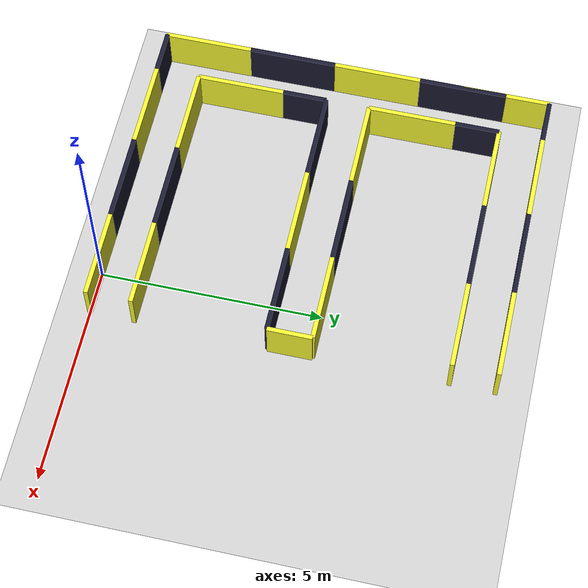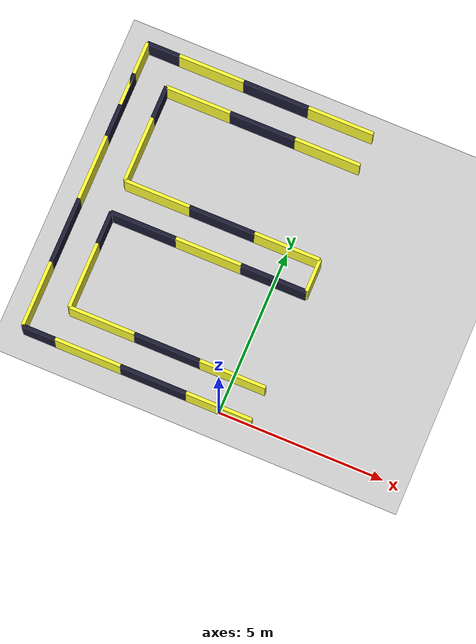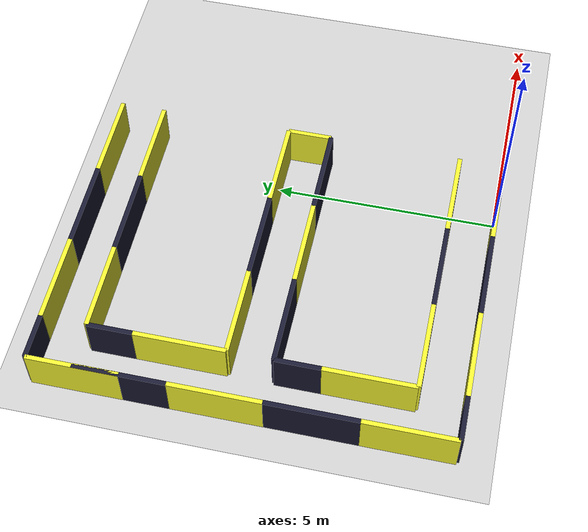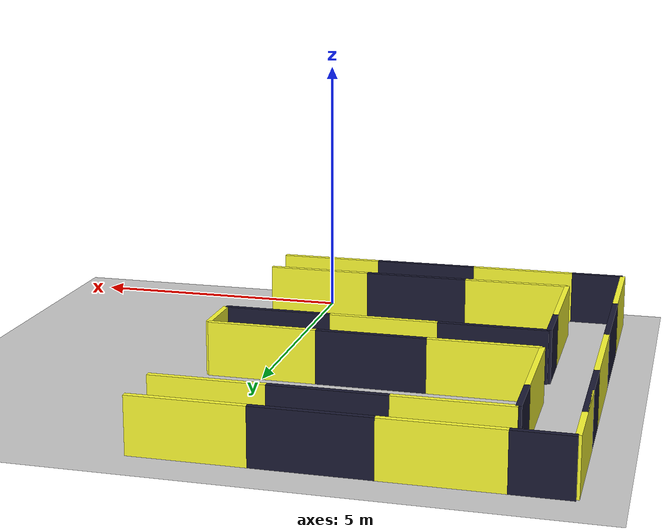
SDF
<sdf version='1.6'>
  <world name='default'>
      <include>
        <uri>model://sun</uri>
      </include>
      <include>
        <uri>model://ground_plane</uri>
      </include>
    <model name="my_wall">
    <static>true</static>
    <link name="link">
      <pose>0 0 0.5 0 0 0</pose>
      <collision name="collision">
        <geometry>
          <box>
            <size>2 0.1 1</size>
          </box>
        </geometry>
      </collision>
      <visual name="visual">
        <cast_shadows>false</cast_shadows>
        <geometry>
          <box>
            <size>2 0.1 1</size>
          </box>
        </geometry>
        <material>
          <ambient>1 1 0.1 1</ambient>
          <diffuse>1 1 0.2 1</diffuse>
          <specular>0 0 0 0</specular>
          <emissive>0 0 0 1</emissive>
        </material>
      </visual>
    </link>
  </model>
  <model name="my_wall1">
    <static>true</static>
    <link name="link">
      <pose>-2 0 0.5 0 0 0</pose>
      <collision name="collision">
        <geometry>
          <box>
            <size>2 0.1 1</size>
          </box>
        </geometry>
      </collision>
      <visual name="visual">
        <cast_shadows>false</cast_shadows>
        <geometry>
          <box>
            <size>2 0.1 1</size>
          </box>
        </geometry>
        <material>
          <ambient>0.1 0.1 0.1 1</ambient>
          <diffuse>0.1 0.1 0.2 1</diffuse>
          <specular>0 0 0 0</specular>
          <emissive>0 0 0 1</emissive>
        </material>
      </visual>
    </link>
  </model>
  <model name="my_wall2">
    <static>true</static>
    <link name="link">
      <pose>-4 0 0.5 0 0 0</pose>
      <collision name="collision">
        <geometry>
          <box>
            <size>2 0.1 1</size>
          </box>
        </geometry>
      </collision>
      <visual name="visual">
        <cast_shadows>false</cast_shadows>
        <geometry>
          <box>
            <size>2 0.1 1</size>
          </box>
        </geometry>
        <material>
          <ambient>1 1 0.1 1</ambient>
          <diffuse>1 1 0.2 1</diffuse>
          <specular>0 0 0 0</specular>
          <emissive>0 0 0 1</emissive>
        </material>
      </visual>
    </link>
  </model>
  <model name="my_wall3">
    <static>true</static>
    <link name="link">
      <pose>-5.5 0 0.5 0 0 0</pose>
      <collision name="collision">
        <geometry>
          <box>
            <size>1 0.1 1</size>
          </box>
        </geometry>
      </collision>
      <visual name="visual">
        <cast_shadows>false</cast_shadows>
        <geometry>
          <box>
            <size>1 0.1 1</size>
          </box>
        </geometry>
        <material>
          <ambient>0.1 0.1 0.1 1</ambient>
          <diffuse>0.1 0.1 0.2 1</diffuse>
          <specular>0 0 0 0</specular>
          <emissive>0 0 0 1</emissive>
        </material>
      </visual>
    </link>
  </model>
  <model name="my_wall4">
    <static>true</static>
    <link name="link">
      <pose>0 1 0.5 0 0 0</pose>
      <collision name="collision">
        <geometry>
          <box>
            <size>2 0.1 1</size>
          </box>
        </geometry>
      </collision>
      <visual name="visual">
        <cast_shadows>false</cast_shadows>
        <geometry>
          <box>
            <size>2 0.1 1</size>
          </box>
        </geometry>
        <material>
          <ambient>1 1 0.1 1</ambient>
          <diffuse>1 1 0.2 1</diffuse>
          <specular>0 0 0 0</specular>
          <emissive>0 0 0 1</emissive>
        </material>
      </visual>
    </link>
  </model>
  <model name="my_wall5">
    <static>true</static>
    <link name="link">
      <pose>-2 1 0.5 0 0 0</pose>
      <collision name="collision">
        <geometry>
          <box>
            <size>2 0.1 1</size>
          </box>
        </geometry>
      </collision>
      <visual name="visual">
        <cast_shadows>false</cast_shadows>
        <geometry>
          <box>
            <size>2 0.1 1</size>
          </box>
        </geometry>
        <material>
          <ambient>0.1 0.1 0.1 1</ambient>
          <diffuse>0.1 0.1 0.2 1</diffuse>
          <specular>0 0 0 0</specular>
          <emissive>0 0 0 1</emissive>
        </material>
      </visual>
    </link>
  </model>
  <model name="my_wall6">
    <static>true</static>
    <link name="link">
      <pose>-4 1 0.5 0 0 0</pose>
      <collision name="collision">
        <geometry>
          <box>
            <size>2 0.1 1</size>
          </box>
        </geometry>
      </collision>
      <visual name="visual">
        <cast_shadows>false</cast_shadows>
        <geometry>
          <box>
            <size>2 0.1 1</size>
          </box>
        </geometry>
        <material>
          <ambient>1 1 0.1 1</ambient>
          <diffuse>1 1 0.2 1</diffuse>
          <specular>0 0 0 0</specular>
          <emissive>0 0 0 1</emissive>
        </material>
      </visual>
    </link>
  </model>
  <model name="my_wall7">
    <static>true</static>
    <link name="link">
      <pose>-6 1 0.5 0 0 1.57</pose>
      <collision name="collision">
        <geometry>
          <box>
            <size>2 0.1 1</size>
          </box>
        </geometry>
      </collision>
      <visual name="visual">
        <cast_shadows>false</cast_shadows>
        <geometry>
          <box>
            <size>2 0.1 1</size>
          </box>
        </geometry>
        <material>
          <ambient>1 1 0.1 1</ambient>
          <diffuse>1 1 0.2 1</diffuse>
          <specular>0 0 0 0</specular>
          <emissive>0 0 0 1</emissive>
        </material>
      </visual>
    </link>
  </model>
  <model name="my_wall8">
    <static>true</static>
    <link name="link">
      <pose>-5 2 0.5 0 0 1.57</pose>
      <collision name="collision">
        <geometry>
          <box>
            <size>2 0.1 1</size>
          </box>
        </geometry>
      </collision>
      <visual name="visual">
        <cast_shadows>false</cast_shadows>
        <geometry>
          <box>
            <size>2 0.1 1</size>
          </box>
        </geometry>
        <material>
          <ambient>1 1 0.1 1</ambient>
          <diffuse>1 1 0.2 1</diffuse>
          <specular>0 0 0 0</specular>
          <emissive>0 0 0 1</emissive>
        </material>
      </visual>
    </link>
  </model>
  <model name="my_wall9">
    <static>true</static>
    <link name="link">
      <pose>-6 3 0.5 0 0 1.57</pose>
      <collision name="collision">
        <geometry>
          <box>
            <size>2 0.1 1</size>
          </box>
        </geometry>
      </collision>
      <visual name="visual">
        <cast_shadows>false</cast_shadows>
        <geometry>
          <box>
            <size>2 0.1 1</size>
          </box>
        </geometry>
        <material>
          <ambient>0.1 0.1 0.1 1</ambient>
          <diffuse>0.1 0.1 0.2 1</diffuse>
          <specular>0 0 0 0</specular>
          <emissive>0 0 0 1</emissive>
        </material>
      </visual>
    </link>
  </model>
  <model name="my_wall10">
    <static>true</static>
    <link name="link">
      <pose>-5 3.5 0.5 0 0 1.57</pose>
      <collision name="collision">
        <geometry>
          <box>
            <size>1 0.1 1</size>
          </box>
        </geometry>
      </collision>
      <visual name="visual">
        <cast_shadows>false</cast_shadows>
        <geometry>
          <box>
            <size>1 0.1 1</size>
          </box>
        </geometry>
        <material>
          <ambient>0.1 0.1 0.1 1</ambient>
          <diffuse>0.1 0.1 0.2 1</diffuse>
          <specular>0 0 0 0</specular>
          <emissive>0 0 0 1</emissive>
        </material>
      </visual>
    </link>
  </model>
  <model name="my_wall11">
    <static>true</static>
    <link name="link">
      <pose>0 5 0.5 0 0 0</pose>
      <collision name="collision">
        <geometry>
          <box>
            <size>2 0.1 1</size>
          </box>
        </geometry>
      </collision>
      <visual name="visual">
        <cast_shadows>false</cast_shadows>
        <geometry>
          <box>
            <size>2 0.1 1</size>
          </box>
        </geometry>
        <material>
          <ambient>1 1 0.1 1</ambient>
          <diffuse>1 1 0.2 1</diffuse>
          <specular>0 0 0 0</specular>
          <emissive>0 0 0 1</emissive>
        </material>
      </visual>
    </link>
  </model>
  <model name="my_wall12">
    <static>true</static>
    <link name="link">
      <pose>-2 5 0.5 0 0 0</pose>
      <collision name="collision">
        <geometry>
          <box>
            <size>2 0.1 1</size>
          </box>
        </geometry>
      </collision>
      <visual name="visual">
        <cast_shadows>false</cast_shadows>
        <geometry>
          <box>
            <size>2 0.1 1</size>
          </box>
        </geometry>
        <material>
          <ambient>0.1 0.1 0.1 1</ambient>
          <diffuse>0.1 0.1 0.2 1</diffuse>
          <specular>0 0 0 0</specular>
          <emissive>0 0 0 1</emissive>
        </material>
      </visual>
    </link>
  </model>
  <model name="my_wall13">
    <static>true</static>
    <link name="link">
      <pose>-4 5 0.5 0 0 0</pose>
      <collision name="collision">
        <geometry>
          <box>
            <size>2 0.1 1</size>
          </box>
        </geometry>
      </collision>
      <visual name="visual">
        <cast_shadows>false</cast_shadows>
        <geometry>
          <box>
            <size>2 0.1 1</size>
          </box>
        </geometry>
        <material>
          <ambient>1 1 0.1 1</ambient>
          <diffuse>1 1 0.2 1</diffuse>
          <specular>0 0 0 0</specular>
          <emissive>0 0 0 1</emissive>
        </material>
      </visual>
    </link>
  </model>

  <model name="my_wall15">
    <static>true</static>
    <link name="link">
      <pose>0 4 0.5 0 0 0</pose>
      <collision name="collision">
        <geometry>
          <box>
            <size>2 0.1 1</size>
          </box>
        </geometry>
      </collision>
      <visual name="visual">
        <cast_shadows>false</cast_shadows>
        <geometry>
          <box>
            <size>2 0.1 1</size>
          </box>
        </geometry>
        <material>
          <ambient>0.1 0.1 0.1 1</ambient>
          <diffuse>0.1 0.1 0.2 1</diffuse>
          <specular>0 0 0 0</specular>
          <emissive>0 0 0 1</emissive>
        </material>
      </visual>
    </link>
  </model>
  <model name="my_wall16">
    <static>true</static>
    <link name="link">
      <pose>-2 4 0.5 0 0 0</pose>
      <collision name="collision">
        <geometry>
          <box>
            <size>2 0.1 1</size>
          </box>
        </geometry>
      </collision>
      <visual name="visual">
        <cast_shadows>false</cast_shadows>
        <geometry>
          <box>
            <size>2 0.1 1</size>
          </box>
        </geometry>
        <material>
          <ambient>1 1 0.1 1</ambient>
          <diffuse>1 1 0.2 1</diffuse>
          <specular>0 0 0 0</specular>
          <emissive>0 0 0 1</emissive>
        </material>
      </visual>
    </link>
  </model>
  <model name="my_wall17">
    <static>true</static>
    <link name="link">
      <pose>-4 4 0.5 0 0 0</pose>
      <collision name="collision">
        <geometry>
          <box>
            <size>2 0.1 1</size>
          </box>
        </geometry>
      </collision>
      <visual name="visual">
        <cast_shadows>false</cast_shadows>
        <geometry>
          <box>
            <size>2 0.1 1</size>
          </box>
        </geometry>
        <material>
          <ambient>0.1 0.1 0.1 1</ambient>
          <diffuse>0.1 0.1 0.2 1</diffuse>
          <specular>0 0 0 0</specular>
          <emissive>0 0 0 1</emissive>
        </material>
      </visual>
    </link>
  </model>
  <model name="my_wall18">
    <static>true</static>
    <link name="link">
      <pose>1 4.5 0.5 0 0 1.57</pose>
      <collision name="collision">
        <geometry>
          <box>
            <size>1 0.1 1</size>
          </box>
        </geometry>
      </collision>
      <visual name="visual">
        <cast_shadows>false</cast_shadows>
        <geometry>
          <box>
            <size>1 0.1 1</size>
          </box>
        </geometry>
        <material>
          <ambient>1 1 0.1 1</ambient>
          <diffuse>1 1 0.2 1</diffuse>
          <specular>0 0 0 0</specular>
          <emissive>0 0 0 1</emissive>
        </material>
      </visual>
    </link>
  </model>
  <model name="my_wall19">
    <static>true</static>
    <link name="link">
      <pose>-6 5 0.5 0 0 1.57</pose>
      <collision name="collision">
        <geometry>
          <box>
            <size>2 0.1 1</size>
          </box>
        </geometry>
      </collision>
      <visual name="visual">
        <cast_shadows>false</cast_shadows>
        <geometry>
          <box>
            <size>2 0.1 1</size>
          </box>
        </geometry>
        <material>
          <ambient>1 1 0.1 1</ambient>
          <diffuse>1 1 0.2 1</diffuse>
          <specular>0 0 0 0</specular>
          <emissive>0 0 0 1</emissive>
        </material>
      </visual>
    </link>
  </model>
  <model name="my_wall20">
    <static>true</static>
    <link name="link">
      <pose>-5 6 0.5 0 0 1.57</pose>
      <collision name="collision">
        <geometry>
          <box>
            <size>2 0.1 1</size>
          </box>
        </geometry>
      </collision>
      <visual name="visual">
        <cast_shadows>false</cast_shadows>
        <geometry>
          <box>
            <size>2 0.1 1</size>
          </box>
        </geometry>
        <material>
          <ambient>1 1 0.1 1</ambient>
          <diffuse>1 1 0.2 1</diffuse>
          <specular>0 0 0 0</specular>
          <emissive>0 0 0 1</emissive>
        </material>
      </visual>
    </link>
  </model>
  <model name="my_wall21">
    <static>true</static>
    <link name="link">
      <pose>-6 7 0.5 0 0 1.57</pose>
      <collision name="collision">
        <geometry>
          <box>
            <size>2 0.1 1</size>
          </box>
        </geometry>
      </collision>
      <visual name="visual">
        <cast_shadows>false</cast_shadows>
        <geometry>
          <box>
            <size>2 0.1 1</size>
          </box>
        </geometry>
        <material>
          <ambient>0.1 0.1 0.1 1</ambient>
          <diffuse>0.1 0.1 0.2 1</diffuse>
          <specular>0 0 0 0</specular>
          <emissive>0 0 0 1</emissive>
        </material>
      </visual>
    </link>
  </model>
  <model name="my_wall22">
    <static>true</static>
    <link name="link">
      <pose>-5 7.5 0.5 0 0 1.57</pose>
      <collision name="collision">
        <geometry>
          <box>
            <size>1 0.1 1</size>
          </box>
        </geometry>
      </collision>
      <visual name="visual">
        <cast_shadows>false</cast_shadows>
        <geometry>
          <box>
            <size>1 0.1 1</size>
          </box>
        </geometry>
        <material>
          <ambient>0.1 0.1 0.1 1</ambient>
          <diffuse>0.1 0.1 0.2 1</diffuse>
          <specular>0 0 0 0</specular>
          <emissive>0 0 0 1</emissive>
        </material>
      </visual>
    </link>
  </model>

  <model name="my_wall24">
    <static>true</static>
    <link name="link">
      <pose>0 9 0.5 0 0 0</pose>
      <collision name="collision">
        <geometry>
          <box>
            <size>2 0.1 1</size>
          </box>
        </geometry>
      </collision>
      <visual name="visual">
        <cast_shadows>false</cast_shadows>
        <geometry>
          <box>
            <size>2 0.1 1</size>
          </box>
        </geometry>
        <material>
          <ambient>1 1 0.1 1</ambient>
          <diffuse>1 1 0.2 1</diffuse>
          <specular>0 0 0 0</specular>
          <emissive>0 0 0 1</emissive>
        </material>
      </visual>
    </link>
  </model>
  <model name="my_wall25">
    <static>true</static>
    <link name="link">
      <pose>-2 9 0.5 0 0 0</pose>
      <collision name="collision">
        <geometry>
          <box>
            <size>2 0.1 1</size>
          </box>
        </geometry>
      </collision>
      <visual name="visual">
        <cast_shadows>false</cast_shadows>
        <geometry>
          <box>
            <size>2 0.1 1</size>
          </box>
        </geometry>
        <material>
          <ambient>0.1 0.1 0.1 1</ambient>
          <diffuse>0.1 0.1 0.2 1</diffuse>
          <specular>0 0 0 0</specular>
          <emissive>0 0 0 1</emissive>
        </material>
      </visual>
    </link>
  </model>
  <model name="my_wall26">
    <static>true</static>
    <link name="link">
      <pose>-4 9 0.5 0 0 0</pose>
      <collision name="collision">
        <geometry>
          <box>
            <size>2 0.1 1</size>
          </box>
        </geometry>
      </collision>
      <visual name="visual">
        <cast_shadows>false</cast_shadows>
        <geometry>
          <box>
            <size>2 0.1 1</size>
          </box>
        </geometry>
        <material>
          <ambient>1 1 0.1 1</ambient>
          <diffuse>1 1 0.2 1</diffuse>
          <specular>0 0 0 0</specular>
          <emissive>0 0 0 1</emissive>
        </material>
      </visual>
    </link>
  </model>
  <model name="my_wall27">
    <static>true</static>
    <link name="link">
      <pose>-5.5 9 0.5 0 0 0</pose>
      <collision name="collision">
        <geometry>
          <box>
            <size>1 0.1 1</size>
          </box>
        </geometry>
      </collision>
      <visual name="visual">
        <cast_shadows>false</cast_shadows>
        <geometry>
          <box>
            <size>1 0.1 1</size>
          </box>
        </geometry>
        <material>
          <ambient>0.1 0.1 0.1 1</ambient>
          <diffuse>0.1 0.1 0.2 1</diffuse>
          <specular>0 0 0 0</specular>
          <emissive>0 0 0 1</emissive>
        </material>
      </visual>
    </link>
  </model>
  <model name="my_wall28">
    <static>true</static>
    <link name="link">
      <pose>0 8 0.5 0 0 0</pose>
      <collision name="collision">
        <geometry>
          <box>
            <size>2 0.1 1</size>
          </box>
        </geometry>
      </collision>
      <visual name="visual">
        <cast_shadows>false</cast_shadows>
        <geometry>
          <box>
            <size>2 0.1 1</size>
          </box>
        </geometry>
        <material>
          <ambient>1 1 0.1 1</ambient>
          <diffuse>1 1 0.2 1</diffuse>
          <specular>0 0 0 0</specular>
          <emissive>0 0 0 1</emissive>
        </material>
      </visual>
    </link>
  </model>
  <model name="my_wall29">
    <static>true</static>
    <link name="link">
      <pose>-2 8 0.5 0 0 0</pose>
      <collision name="collision">
        <geometry>
          <box>
            <size>2 0.1 1</size>
          </box>
        </geometry>
      </collision>
      <visual name="visual">
        <cast_shadows>false</cast_shadows>
        <geometry>
          <box>
            <size>2 0.1 1</size>
          </box>
        </geometry>
        <material>
          <ambient>0.1 0.1 0.1 1</ambient>
          <diffuse>0.1 0.1 0.2 1</diffuse>
          <specular>0 0 0 0</specular>
          <emissive>0 0 0 1</emissive>
        </material>
      </visual>
    </link>
  </model>
  <model name="my_wall30">
    <static>true</static>
    <link name="link">
      <pose>-4 8 0.5 0 0 0</pose>
      <collision name="collision">
        <geometry>
          <box>
            <size>2 0.1 1</size>
          </box>
        </geometry>
      </collision>
      <visual name="visual">
        <cast_shadows>false</cast_shadows>
        <geometry>
          <box>
            <size>2 0.1 1</size>
          </box>
        </geometry>
        <material>
          <ambient>1 1 0.1 1</ambient>
          <diffuse>1 1 0.2 1</diffuse>
          <specular>0 0 0 0</specular>
          <emissive>0 0 0 1</emissive>
        </material>
      </visual>
    </link>
  </model>
  <model name="my_wall31">
    <static>true</static>
    <link name="link">
      <pose>-6 8 0.5 0 0 1.57</pose>
      <collision name="collision">
        <geometry>
          <box>
            <size>2 0.1 1</size>
          </box>
        </geometry>
      </collision>
      <visual name="visual">
        <cast_shadows>false</cast_shadows>
        <geometry>
          <box>
            <size>2 0.1 1</size>
          </box>
        </geometry>
        <material>
          <ambient>1 1 0.1 1</ambient>
          <diffuse>1 1 0.2 1</diffuse>
          <specular>0 0 0 0</specular>
          <emissive>0 0 0 1</emissive>
        </material>
      </visual>
    </link>
  </model>
  </world>
</sdf>
